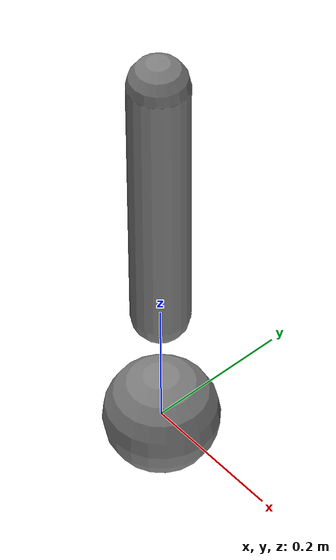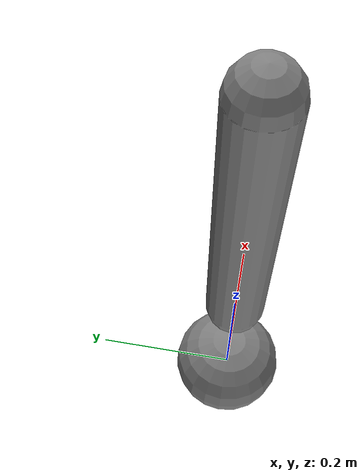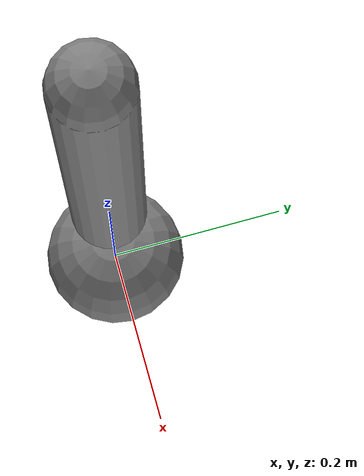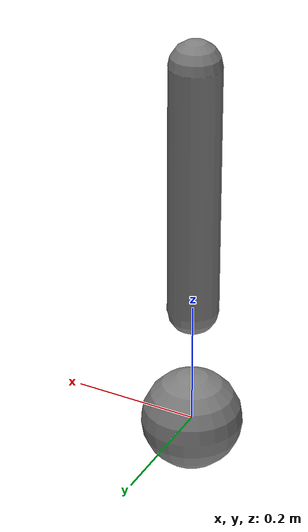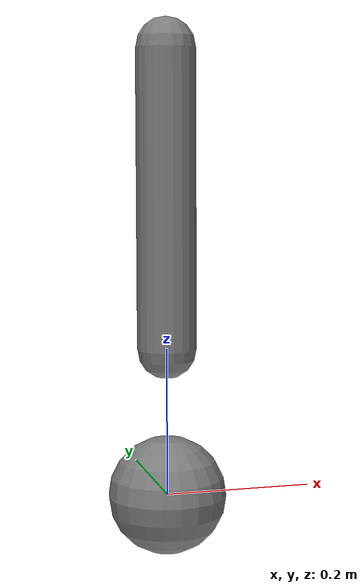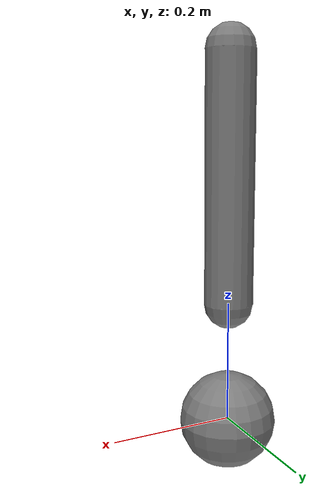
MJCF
<mujoco model="floating_muscle">
  <compiler angle="radian"/>
  <option timestep="0.001" gravity="0 0 0" integrator="Euler"/>
  <worldbody>
    <body name="root">
      <freejoint name="floating"/>
      <geom name="root_mass" type="sphere" size="0.08" mass="2"
            contype="0" conaffinity="0"/>
      <body name="arm" pos="0 0 0.2">
        <joint name="hinge" type="hinge" axis="0 1 0" range="-1 1"
               limited="true" damping="0.01"/>
        <geom type="capsule" fromto="0 0 0 0 0 0.4" size="0.04" mass="0.5"
              contype="0" conaffinity="0"/>
      </body>
    </body>
  </worldbody>
  <actuator>
    <muscle name="drive" joint="hinge" gear="0.2" lengthrange="0.1 1.0"
            force="100" scale="1" ctrlrange="0 1" ctrllimited="true"/>
  </actuator>
</mujoco>
